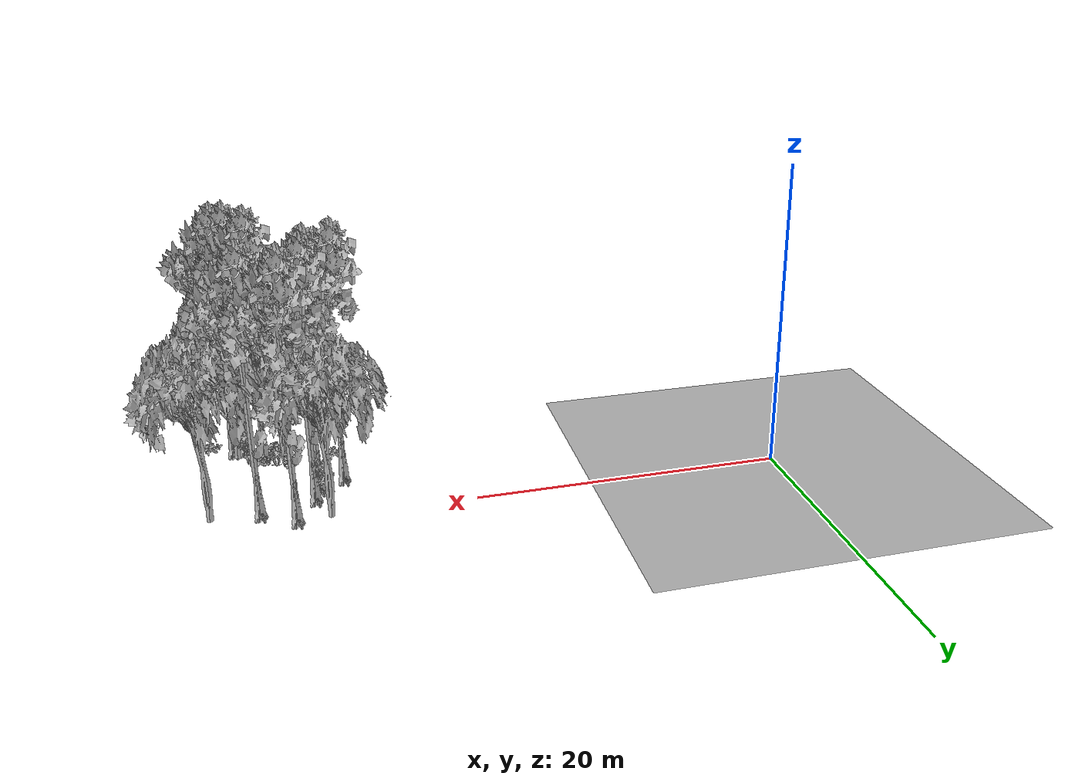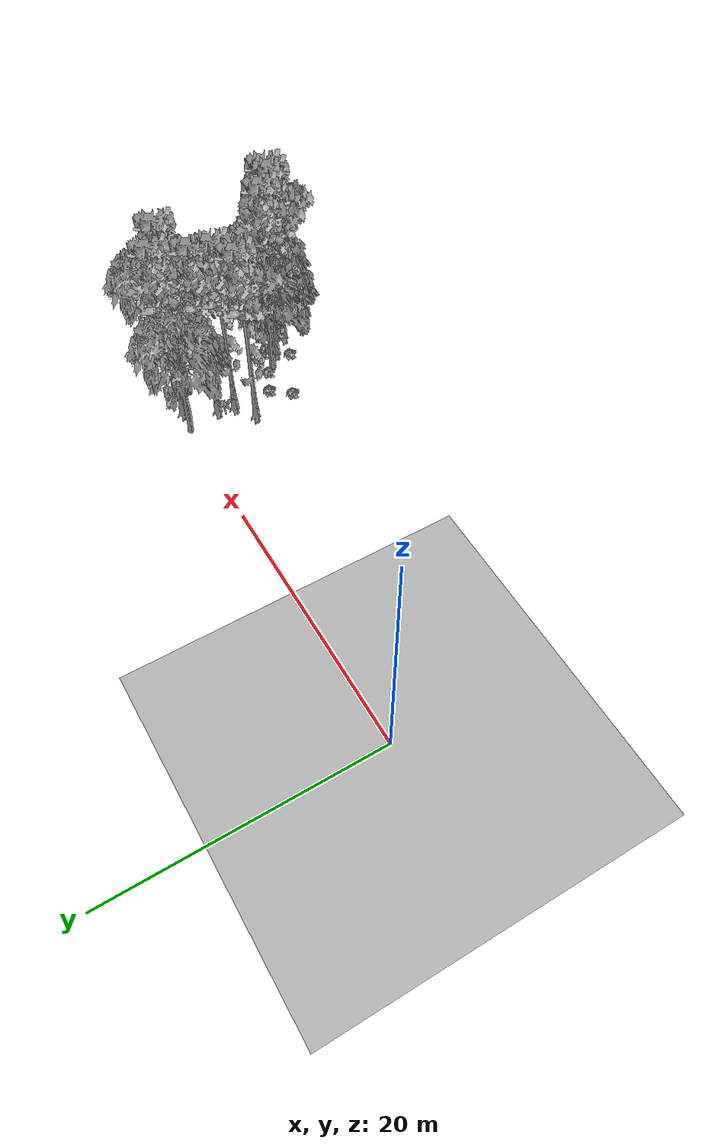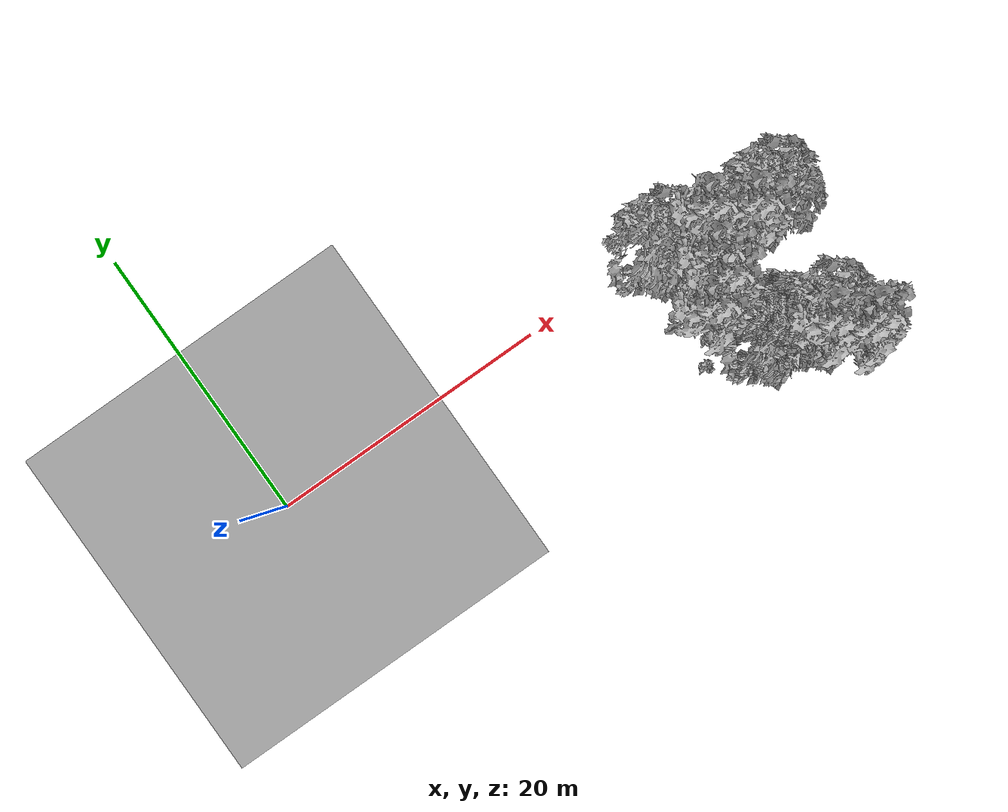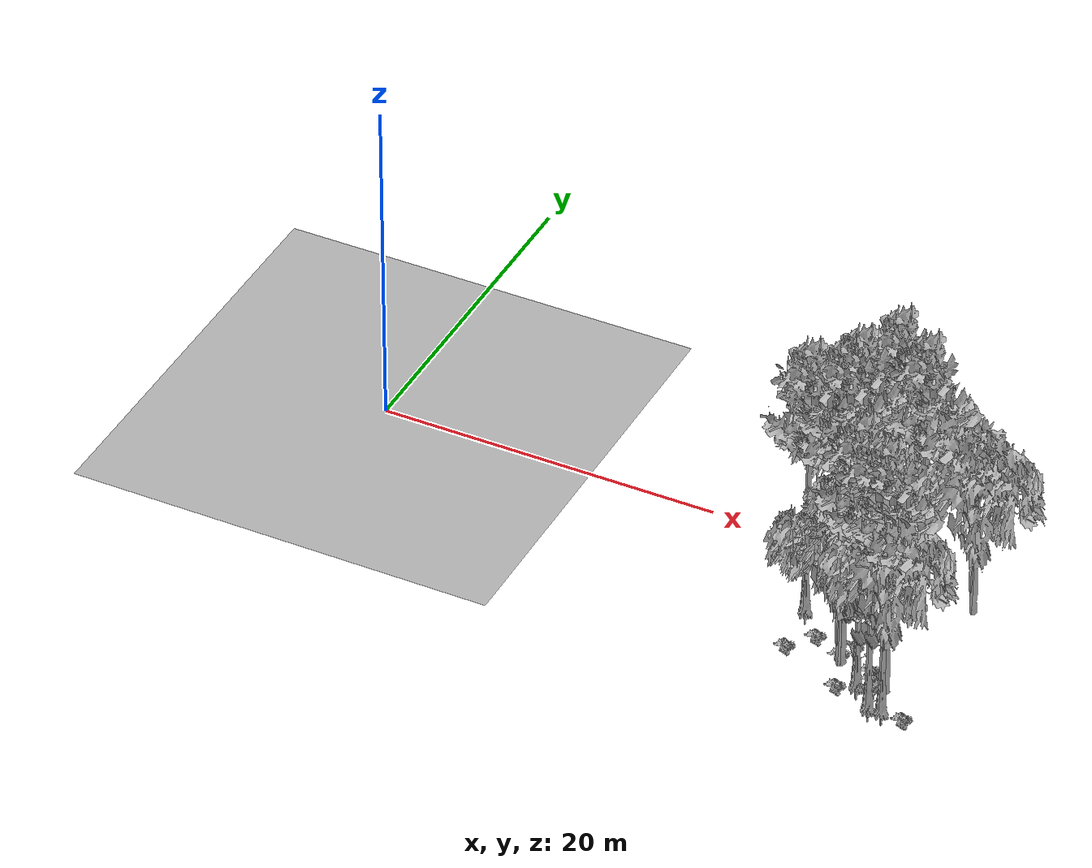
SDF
<sdf version="1.7">
 <world name="default">
  <model name="ground_plane">
   <static>1</static>
   <link name="link">
    <collision name="collision">
     <pose>-50 0 0 0 -0 0</pose>
     <geometry><plane><normal>0 0 1</normal><size>80 80</size></plane></geometry>
     <surface><contact><ode><min_depth>0.01</min_depth><max_vel>0</max_vel></ode></contact></surface>
    </collision>
    <visual name="grass">
     <cast_shadows>0</cast_shadows>
     <geometry>
      <mesh>
       <scale>0.46714285714285714 0.46714285714285714 0.1</scale>
       <uri>file://grass_plane/meshes/grass_plane.dae</uri>
      </mesh>
     </geometry>
    </visual>
   </link>
  </model>
  <model name="Tree 44">
   <static>1</static>
   <pose>29.828574070417787 -2.8630253228562736 0 1.57079 -0 0</pose>
   <link name="link">
    <collision name="collision">
     <geometry><mesh><scale>3.5 5 3.5</scale><uri>model://tree_9/meshes/tree_9.obj</uri></mesh></geometry>
    </collision>
    <visual name="visual">
     <geometry><mesh><scale>3.5 5 3.5</scale><uri>model://tree_9/meshes/tree_9.obj</uri></mesh></geometry>
    </visual>
   </link>
  </model>
  <model name="Tree 56">
   <static>1</static>
   <pose>31.009430871521758 -0.4961113321103383 0 1.57079 -0 0</pose>
   <link name="link">
    <collision name="collision">
     <geometry><mesh><scale>3.5 5 3.5</scale><uri>model://tree_9/meshes/tree_9.obj</uri></mesh></geometry>
    </collision>
    <visual name="visual">
     <geometry><mesh><scale>3.5 5 3.5</scale><uri>model://tree_9/meshes/tree_9.obj</uri></mesh></geometry>
    </visual>
   </link>
  </model>
  <model name="Tree 70">
   <static>1</static>
   <pose>34.25507007381796 -10.939534100445634 0 1.57079 -0 0</pose>
   <link name="link">
    <collision name="collision">
     <geometry><mesh><scale>3.5 5 3.5</scale><uri>model://tree_9/meshes/tree_9.obj</uri></mesh></geometry>
    </collision>
    <visual name="visual">
     <geometry><mesh><scale>3.5 5 3.5</scale><uri>model://tree_9/meshes/tree_9.obj</uri></mesh></geometry>
    </visual>
   </link>
  </model>
  <model name="Tree 184">
   <static>1</static>
   <pose>31.524583581194406 -8.466817251506349 0 1.57079 -0 0</pose>
   <link name="link">
    <collision name="collision">
     <geometry><mesh><scale>3.5 5 3.5</scale><uri>model://tree_2/meshes/tree_2.obj</uri></mesh></geometry>
    </collision>
    <visual name="visual">
     <geometry><mesh><scale>3.5 5 3.5</scale><uri>model://tree_2/meshes/tree_2.obj</uri></mesh></geometry>
    </visual>
   </link>
  </model>
  <model name="Tree 278">
   <static>1</static>
   <pose>35.002311042569616 -10.878937602378677 0 1.57079 -0 0</pose>
   <link name="link">
    <collision name="collision">
     <geometry><mesh><scale>3.5 5 3.5</scale><uri>model://tree_9/meshes/tree_9.obj</uri></mesh></geometry>
    </collision>
    <visual name="visual">
     <geometry><mesh><scale>3.5 5 3.5</scale><uri>model://tree_9/meshes/tree_9.obj</uri></mesh></geometry>
    </visual>
   </link>
  </model>
  <model name="Tree 301">
   <static>1</static>
   <pose>31.408977200816736 -8.561525824825722 0 1.57079 -0 0</pose>
   <link name="link">
    <collision name="collision">
     <geometry><mesh><scale>3.5 5 3.5</scale><uri>model://tree_2/meshes/tree_2.obj</uri></mesh></geometry>
    </collision>
    <visual name="visual">
     <geometry><mesh><scale>3.5 5 3.5</scale><uri>model://tree_2/meshes/tree_2.obj</uri></mesh></geometry>
    </visual>
   </link>
  </model>
  <model name="Tree 336">
   <static>1</static>
   <pose>29.521755846448812 -4.1571623235183495 0 1.57079 -0 0</pose>
   <link name="link">
    <collision name="collision">
     <geometry><mesh><scale>3.5 5 3.5</scale><uri>model://tree_9/meshes/tree_9.obj</uri></mesh></geometry>
    </collision>
    <visual name="visual">
     <geometry><mesh><scale>3.5 5 3.5</scale><uri>model://tree_9/meshes/tree_9.obj</uri></mesh></geometry>
    </visual>
   </link>
  </model>
  <model name="Tree 366">
   <static>1</static>
   <pose>34.57900475321813 -9.605208249643518 0 1.57079 -0 0</pose>
   <link name="link">
    <collision name="collision">
     <geometry><mesh><scale>3.5 5 3.5</scale><uri>model://tree_2/meshes/tree_2.obj</uri></mesh></geometry>
    </collision>
    <visual name="visual">
     <geometry><mesh><scale>3.5 5 3.5</scale><uri>model://tree_2/meshes/tree_2.obj</uri></mesh></geometry>
    </visual>
   </link>
  </model>
  <model name="Tree 418">
   <static>1</static>
   <pose>32.960727612815816 -9.568137769029505 0 1.57079 -0 0</pose>
   <link name="link">
    <collision name="collision">
     <geometry><mesh><scale>3.5 5 3.5</scale><uri>model://tree_9/meshes/tree_9.obj</uri></mesh></geometry>
    </collision>
    <visual name="visual">
     <geometry><mesh><scale>3.5 5 3.5</scale><uri>model://tree_9/meshes/tree_9.obj</uri></mesh></geometry>
    </visual>
   </link>
  </model>
  <model name="Tree 472">
   <static>1</static>
   <pose>35.99595079401695 -1.5256551646047427 0 1.57079 -0 0</pose>
   <link name="link">
    <collision name="collision">
     <geometry><mesh><scale>3.5 5 3.5</scale><uri>model://tree_2/meshes/tree_2.obj</uri></mesh></geometry>
    </collision>
    <visual name="visual">
     <geometry><mesh><scale>3.5 5 3.5</scale><uri>model://tree_2/meshes/tree_2.obj</uri></mesh></geometry>
    </visual>
   </link>
  </model>
  <model name="Tree 572">
   <static>1</static>
   <pose>27.93622038762814 -5.154661817075777 0 1.57079 -0 0</pose>
   <link name="link">
    <collision name="collision">
     <geometry><mesh><scale>3.5 5 3.5</scale><uri>model://tree_9/meshes/tree_9.obj</uri></mesh></geometry>
    </collision>
    <visual name="visual">
     <geometry><mesh><scale>3.5 5 3.5</scale><uri>model://tree_9/meshes/tree_9.obj</uri></mesh></geometry>
    </visual>
   </link>
  </model>
  <model name="Tree 598">
   <static>1</static>
   <pose>33.188917563488545 -1.8553192804588008 0 1.57079 -0 0</pose>
   <link name="link">
    <collision name="collision">
     <geometry><mesh><scale>3.5 5 3.5</scale><uri>model://tree_9/meshes/tree_9.obj</uri></mesh></geometry>
    </collision>
    <visual name="visual">
     <geometry><mesh><scale>3.5 5 3.5</scale><uri>model://tree_9/meshes/tree_9.obj</uri></mesh></geometry>
    </visual>
   </link>
  </model>
  <model name="Tree 611">
   <static>1</static>
   <pose>28.873293080985334 -0.2161282469350425 0 1.57079 -0 0</pose>
   <link name="link">
    <collision name="collision">
     <geometry><mesh><scale>3.5 5 3.5</scale><uri>model://tree_2/meshes/tree_2.obj</uri></mesh></geometry>
    </collision>
    <visual name="visual">
     <geometry><mesh><scale>3.5 5 3.5</scale><uri>model://tree_2/meshes/tree_2.obj</uri></mesh></geometry>
    </visual>
   </link>
  </model>
  <model name="Bush 49">
   <static>1</static>
   <pose>32.12408646096475 -10.417421326423302 0 1.57079 -0 0</pose>
   <link name="link">
    <collision name="collision">
     <geometry><mesh><scale>2 2 2</scale><uri>model://bush_2/meshes/bush_2.obj</uri></mesh></geometry>
     <surface><contact><collide_without_contact>false</collide_without_contact></contact></surface>
    </collision>
    <visual name="visual">
     <geometry><mesh><scale>2 2 2</scale><uri>model://bush_2/meshes/bush_2.obj</uri></mesh></geometry>
    </visual>
   </link>
  </model>
  <model name="Bush 74">
   <static>1</static>
   <pose>32.124449143046945 -7.748118143449375 0 1.57079 -0 0</pose>
   <link name="link">
    <collision name="collision">
     <geometry><mesh><scale>2 2 2</scale><uri>model://bush_4/meshes/bush_4.obj</uri></mesh></geometry>
     <surface><contact><collide_without_contact>false</collide_without_contact></contact></surface>
    </collision>
    <visual name="visual">
     <geometry><mesh><scale>2 2 2</scale><uri>model://bush_4/meshes/bush_4.obj</uri></mesh></geometry>
    </visual>
   </link>
  </model>
  <model name="Bush 155">
   <static>1</static>
   <pose>28.34459285189773 -8.606604956186558 0 1.57079 -0 0</pose>
   <link name="link">
    <collision name="collision">
     <geometry><mesh><scale>2 2 2</scale><uri>model://bush_2/meshes/bush_2.obj</uri></mesh></geometry>
     <surface><contact><collide_without_contact>false</collide_without_contact></contact></surface>
    </collision>
    <visual name="visual">
     <geometry><mesh><scale>2 2 2</scale><uri>model://bush_2/meshes/bush_2.obj</uri></mesh></geometry>
    </visual>
   </link>
  </model>
  <model name="Bush 187">
   <static>1</static>
   <pose>36.39046006071092 -11.361739173793364 0 1.57079 -0 0</pose>
   <link name="link">
    <collision name="collision">
     <geometry><mesh><scale>2 2 2</scale><uri>model://bush_2/meshes/bush_2.obj</uri></mesh></geometry>
     <surface><contact><collide_without_contact>false</collide_without_contact></contact></surface>
    </collision>
    <visual name="visual">
     <geometry><mesh><scale>2 2 2</scale><uri>model://bush_2/meshes/bush_2.obj</uri></mesh></geometry>
    </visual>
   </link>
  </model>
  <model name="Bush 262">
   <static>1</static>
   <pose>33.21728923624842 -8.49029479761355 0 1.57079 -0 0</pose>
   <link name="link">
    <collision name="collision">
     <geometry><mesh><scale>2 2 2</scale><uri>model://bush_2/meshes/bush_2.obj</uri></mesh></geometry>
     <surface><contact><collide_without_contact>false</collide_without_contact></contact></surface>
    </collision>
    <visual name="visual">
     <geometry><mesh><scale>2 2 2</scale><uri>model://bush_2/meshes/bush_2.obj</uri></mesh></geometry>
    </visual>
   </link>
  </model>
  <model name="Bush 271">
   <static>1</static>
   <pose>34.23648666400425 -10.614640755235527 0 1.57079 -0 0</pose>
   <link name="link">
    <collision name="collision">
     <geometry><mesh><scale>2 2 2</scale><uri>model://bush_4/meshes/bush_4.obj</uri></mesh></geometry>
     <surface><contact><collide_without_contact>false</collide_without_contact></contact></surface>
    </collision>
    <visual name="visual">
     <geometry><mesh><scale>2 2 2</scale><uri>model://bush_4/meshes/bush_4.obj</uri></mesh></geometry>
    </visual>
   </link>
  </model>
  <model name="Bush 304">
   <static>1</static>
   <pose>29.489432527514168 -7.188407406630553 0 1.57079 -0 0</pose>
   <link name="link">
    <collision name="collision">
     <geometry><mesh><scale>2 2 2</scale><uri>model://bush_2/meshes/bush_2.obj</uri></mesh></geometry>
     <surface><contact><collide_without_contact>false</collide_without_contact></contact></surface>
    </collision>
    <visual name="visual">
     <geometry><mesh><scale>2 2 2</scale><uri>model://bush_2/meshes/bush_2.obj</uri></mesh></geometry>
    </visual>
   </link>
  </model>
  <model name="Bush 315">
   <static>1</static>
   <pose>29.160862924325656 -3.18356449039765 0 1.57079 -0 0</pose>
   <link name="link">
    <collision name="collision">
     <geometry><mesh><scale>2 2 2</scale><uri>model://bush_5/meshes/bush_5.obj</uri></mesh></geometry>
     <surface><contact><collide_without_contact>false</collide_without_contact></contact></surface>
    </collision>
    <visual name="visual">
     <geometry><mesh><scale>2 2 2</scale><uri>model://bush_5/meshes/bush_5.obj</uri></mesh></geometry>
    </visual>
   </link>
  </model>
  <model name="Bush 391">
   <static>1</static>
   <pose>33.582857901848726 -9.03504558582732 0 1.57079 -0 0</pose>
   <link name="link">
    <collision name="collision">
     <geometry><mesh><scale>2 2 2</scale><uri>model://bush_2/meshes/bush_2.obj</uri></mesh></geometry>
     <surface><contact><collide_without_contact>false</collide_without_contact></contact></surface>
    </collision>
    <visual name="visual">
     <geometry><mesh><scale>2 2 2</scale><uri>model://bush_2/meshes/bush_2.obj</uri></mesh></geometry>
    </visual>
   </link>
  </model>
  <model name="Bush 622">
   <static>1</static>
   <pose>31.229609153325413 -8.005710809679858 0 1.57079 -0 0</pose>
   <link name="link">
    <collision name="collision">
     <geometry><mesh><scale>2 2 2</scale><uri>model://bush_2/meshes/bush_2.obj</uri></mesh></geometry>
     <surface><contact><collide_without_contact>false</collide_without_contact></contact></surface>
    </collision>
    <visual name="visual">
     <geometry><mesh><scale>2 2 2</scale><uri>model://bush_2/meshes/bush_2.obj</uri></mesh></geometry>
    </visual>
   </link>
  </model>
 </world>
</sdf>
